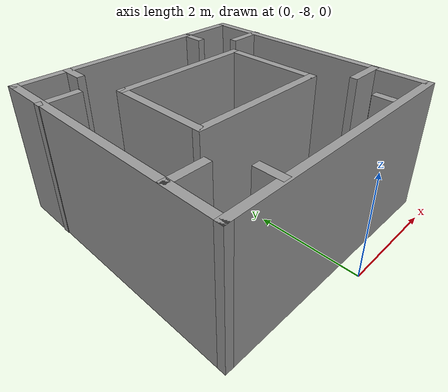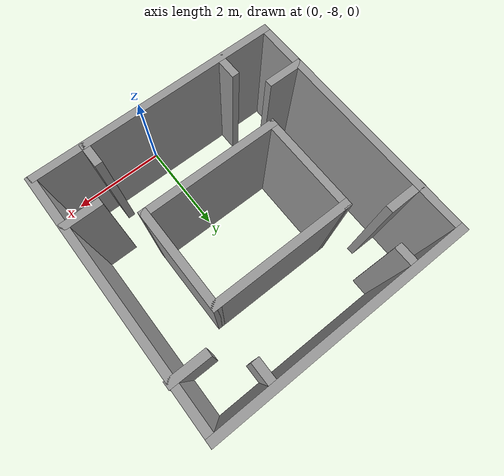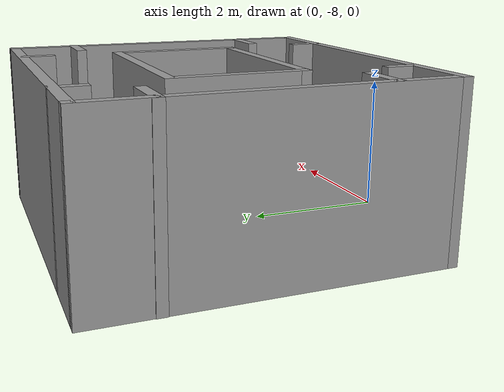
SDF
<?xml version='1.0'?>
<sdf version='1.6'>
  <model name='maze'>
    <pose frame=''>-0.17 -5.155 0 0 -0 0</pose>
    <link name='Wall_0'>
      <collision name='Wall_0_Collision'>
        <geometry>
          <box>
            <size>5 0.15 2.5</size>
          </box>
        </geometry>
        <pose frame=''>0 0 1.25 0 -0 0</pose>
      </collision>
      <visual name='Wall_0_Visual'>
        <pose frame=''>0 0 1.25 0 -0 0</pose>
        <geometry>
          <box>
            <size>5 0.15 2.5</size>
          </box>
        </geometry>
        <material>
          <script>
            <uri>file://media/materials/scripts/gazebo.material</uri>
            <name>Gazebo/Grey</name>
          </script>
          <ambient>1 1 1 1</ambient>
        </material>
      </visual>
      <pose frame=''>-0.005 2.425 0 0 -0 0</pose>
    </link>
    <link name='Wall_10'>
      <collision name='Wall_10_Collision'>
        <geometry>
          <box>
            <size>0.5 0.15 2.5</size>
          </box>
        </geometry>
        <pose frame=''>0 0 1.25 0 -0 0</pose>
      </collision>
      <visual name='Wall_10_Visual'>
        <pose frame=''>0 0 1.25 0 -0 0</pose>
        <geometry>
          <box>
            <size>0.5 0.15 2.5</size>
          </box>
        </geometry>
        <material>
          <script>
            <uri>file://media/materials/scripts/gazebo.material</uri>
            <name>Gazebo/Grey</name>
          </script>
          <ambient>1 1 1 1</ambient>
        </material>
      </visual>
      <pose frame=''>-1.46 2.25 0 0 0 -1.5708</pose>
    </link>
    <link name='Wall_12'>
      <collision name='Wall_12_Collision'>
        <geometry>
          <box>
            <size>0.5 0.15 2.5</size>
          </box>
        </geometry>
        <pose frame=''>0 0 1.25 0 -0 0</pose>
      </collision>
      <visual name='Wall_12_Visual'>
        <pose frame=''>0 0 1.25 0 -0 0</pose>
        <geometry>
          <box>
            <size>0.5 0.15 2.5</size>
          </box>
        </geometry>
        <material>
          <script>
            <uri>file://media/materials/scripts/gazebo.material</uri>
            <name>Gazebo/Grey</name>
          </script>
          <ambient>1 1 1 1</ambient>
        </material>
      </visual>
      <pose frame=''>1.32 2.21 0 0 0 -1.5708</pose>
    </link>
    <link name='Wall_14'>
      <collision name='Wall_14_Collision'>
        <geometry>
          <box>
            <size>0.75 0.15 2.5</size>
          </box>
        </geometry>
        <pose frame=''>0 0 1.25 0 -0 0</pose>
      </collision>
      <visual name='Wall_14_Visual'>
        <pose frame=''>0 0 1.25 0 -0 0</pose>
        <geometry>
          <box>
            <size>0.75 0.15 2.5</size>
          </box>
        </geometry>
        <material>
          <script>
            <uri>file://media/materials/scripts/gazebo.material</uri>
            <name>Gazebo/Grey</name>
          </script>
          <ambient>1 1 1 1</ambient>
        </material>
      </visual>
      <pose frame=''>2.14 1.475 0 0 -0 3.14159</pose>
    </link>
    <link name='Wall_16'>
      <collision name='Wall_16_Collision'>
        <geometry>
          <box>
            <size>2.75 0.15 2.5</size>
          </box>
        </geometry>
        <pose frame=''>0 0 1.25 0 -0 0</pose>
      </collision>
      <visual name='Wall_16_Visual'>
        <pose frame=''>0 0 1.25 0 -0 0</pose>
        <geometry>
          <box>
            <size>2.75 0.15 2.5</size>
          </box>
        </geometry>
        <material>
          <script>
            <uri>file://media/materials/scripts/gazebo.material</uri>
            <name>Gazebo/Grey</name>
          </script>
          <ambient>1 1 1 1</ambient>
        </material>
      </visual>
      <pose frame=''>0.01 1.005 0 0 -0 0</pose>
    </link>
    <link name='Wall_17'>
      <collision name='Wall_17_Collision'>
        <geometry>
          <box>
            <size>1.97 0.15 2.5</size>
          </box>
        </geometry>
        <pose frame=''>0 0 1.25 0 -0 0</pose>
      </collision>
      <visual name='Wall_17_Visual'>
        <pose frame=''>0 0 1.25 0 -0 0</pose>
        <geometry>
          <box>
            <size>1.97 0.15 2.5</size>
          </box>
        </geometry>
        <material>
          <script>
            <uri>file://media/materials/scripts/gazebo.material</uri>
            <name>Gazebo/Grey</name>
          </script>
          <ambient>1 1 1 1</ambient>
        </material>
      </visual>
      <pose frame=''>1.31 0.095 0 0 0 -1.5708</pose>
    </link>
    <link name='Wall_18'>
      <collision name='Wall_18_Collision'>
        <geometry>
          <box>
            <size>2.75 0.15 2.5</size>
          </box>
        </geometry>
        <pose frame=''>0 0 1.25 0 -0 0</pose>
      </collision>
      <visual name='Wall_18_Visual'>
        <pose frame=''>0 0 1.25 0 -0 0</pose>
        <geometry>
          <box>
            <size>2.75 0.15 2.5</size>
          </box>
        </geometry>
        <material>
          <script>
            <uri>file://media/materials/scripts/gazebo.material</uri>
            <name>Gazebo/Grey</name>
          </script>
          <ambient>1 1 1 1</ambient>
        </material>
      </visual>
      <pose frame=''>0.01 -0.825 0 0 -0 3.14159</pose>
    </link>
    <link name='Wall_19'>
      <collision name='Wall_19_Collision'>
        <geometry>
          <box>
            <size>1.97 0.15 2.5</size>
          </box>
        </geometry>
        <pose frame=''>0 0 1.25 0 -0 0</pose>
      </collision>
      <visual name='Wall_19_Visual'>
        <pose frame=''>0 0 1.25 0 -0 0</pose>
        <geometry>
          <box>
            <size>1.97 0.15 2.5</size>
          </box>
        </geometry>
        <material>
          <script>
            <uri>file://media/materials/scripts/gazebo.material</uri>
            <name>Gazebo/Grey</name>
          </script>
          <ambient>1 1 1 1</ambient>
        </material>
      </visual>
      <pose frame=''>-1.29 0.095 0 0 -0 1.5708</pose>
    </link>
    <link name='Wall_21'>
      <collision name='Wall_21_Collision'>
        <geometry>
          <box>
            <size>0.75 0.15 2.5</size>
          </box>
        </geometry>
        <pose frame=''>0 0 1.25 0 -0 0</pose>
      </collision>
      <visual name='Wall_21_Visual'>
        <pose frame=''>0 0 1.25 0 -0 0</pose>
        <geometry>
          <box>
            <size>0.75 0.15 2.5</size>
          </box>
        </geometry>
        <material>
          <script>
            <uri>file://media/materials/scripts/gazebo.material</uri>
            <name>Gazebo/Grey</name>
          </script>
          <ambient>1 1 1 1</ambient>
        </material>
      </visual>
      <pose frame=''>-2.12 -1.475 0 0 -0 0</pose>
    </link>
    <link name='Wall_23'>
      <collision name='Wall_23_Collision'>
        <geometry>
          <box>
            <size>0.5 0.15 2.5</size>
          </box>
        </geometry>
        <pose frame=''>0 0 1.25 0 -0 0</pose>
      </collision>
      <visual name='Wall_23_Visual'>
        <pose frame=''>0 0 1.25 0 -0 0</pose>
        <geometry>
          <box>
            <size>0.5 0.15 2.5</size>
          </box>
        </geometry>
        <material>
          <script>
            <uri>file://media/materials/scripts/gazebo.material</uri>
            <name>Gazebo/Grey</name>
          </script>
          <ambient>1 1 1 1</ambient>
        </material>
      </visual>
      <pose frame=''>-1.41 -2.21 0 0 -0 1.5708</pose>
    </link>
    <link name='Wall_25'>
      <collision name='Wall_25_Collision'>
        <geometry>
          <box>
            <size>0.75 0.15 2.5</size>
          </box>
        </geometry>
        <pose frame=''>0 0 1.25 0 -0 0</pose>
      </collision>
      <visual name='Wall_25_Visual'>
        <pose frame=''>0 0 1.25 0 -0 0</pose>
        <geometry>
          <box>
            <size>0.75 0.15 2.5</size>
          </box>
        </geometry>
        <material>
          <script>
            <uri>file://media/materials/scripts/gazebo.material</uri>
            <name>Gazebo/Grey</name>
          </script>
          <ambient>1 1 1 1</ambient>
        </material>
      </visual>
      <pose frame=''>2.1 -1.415 0 0 -0 3.14159</pose>
    </link>
    <link name='Wall_27'>
      <collision name='Wall_27_Collision'>
        <geometry>
          <box>
            <size>0.5 0.15 2.5</size>
          </box>
        </geometry>
        <pose frame=''>0 0 1.25 0 -0 0</pose>
      </collision>
      <visual name='Wall_27_Visual'>
        <pose frame=''>0 0 1.25 0 -0 0</pose>
        <geometry>
          <box>
            <size>0.5 0.15 2.5</size>
          </box>
        </geometry>
        <material>
          <script>
            <uri>file://media/materials/scripts/gazebo.material</uri>
            <name>Gazebo/Grey</name>
          </script>
          <ambient>1 1 1 1</ambient>
        </material>
      </visual>
      <pose frame=''>1.41 -2.23 0 0 -0 1.5708</pose>
    </link>
    <link name='Wall_3'>
      <collision name='Wall_3_Collision'>
        <geometry>
          <box>
            <size>5 0.15 2.5</size>
          </box>
        </geometry>
        <pose frame=''>0 0 1.25 0 -0 0</pose>
      </collision>
      <visual name='Wall_3_Visual'>
        <pose frame=''>0 0 1.25 0 -0 0</pose>
        <geometry>
          <box>
            <size>5 0.15 2.5</size>
          </box>
        </geometry>
        <material>
          <script>
            <uri>file://media/materials/scripts/gazebo.material</uri>
            <name>Gazebo/Grey</name>
          </script>
          <ambient>1 1 1 1</ambient>
        </material>
      </visual>
      <pose frame=''>2.42 0 0 0 0 -1.5708</pose>
    </link>
    <link name='Wall_4'>
      <collision name='Wall_4_Collision'>
        <geometry>
          <box>
            <size>5 0.15 2.5</size>
          </box>
        </geometry>
        <pose frame=''>0 0 1.25 0 -0 0</pose>
      </collision>
      <visual name='Wall_4_Visual'>
        <pose frame=''>0 0 1.25 0 -0 0</pose>
        <geometry>
          <box>
            <size>5 0.15 2.5</size>
          </box>
        </geometry>
        <material>
          <script>
            <uri>file://media/materials/scripts/gazebo.material</uri>
            <name>Gazebo/Grey</name>
          </script>
          <ambient>1 1 1 1</ambient>
        </material>
      </visual>
      <pose frame=''>-0.005 -2.425 0 0 -0 3.14159</pose>
    </link>
    <link name='Wall_5'>
      <collision name='Wall_5_Collision'>
        <geometry>
          <box>
            <size>5 0.15 2.5</size>
          </box>
        </geometry>
        <pose frame=''>0 0 1.25 0 -0 0</pose>
      </collision>
      <visual name='Wall_5_Visual'>
        <pose frame=''>0 0 1.25 0 -0 0</pose>
        <geometry>
          <box>
            <size>5 0.15 2.5</size>
          </box>
        </geometry>
        <material>
          <script>
            <uri>file://media/materials/scripts/gazebo.material</uri>
            <name>Gazebo/Grey</name>
          </script>
          <ambient>1 1 1 1</ambient>
        </material>
      </visual>
      <pose frame=''>-2.43 0 0 0 -0 1.5708</pose>
    </link>
    <link name='Wall_8'>
      <collision name='Wall_8_Collision'>
        <geometry>
          <box>
            <size>0.75 0.15 2.5</size>
          </box>
        </geometry>
        <pose frame=''>0 0 1.25 0 -0 0</pose>
      </collision>
      <visual name='Wall_8_Visual'>
        <pose frame=''>0 0 1.25 0 -0 0</pose>
        <geometry>
          <box>
            <size>0.75 0.15 2.5</size>
          </box>
        </geometry>
        <material>
          <script>
            <uri>file://media/materials/scripts/gazebo.material</uri>
            <name>Gazebo/Grey</name>
          </script>
          <ambient>1 1 1 1</ambient>
        </material>
      </visual>
      <pose frame=''>-2.14 1.495 0 0 -0 0</pose>
    </link>
    <static>1</static>
  </model>
</sdf>
